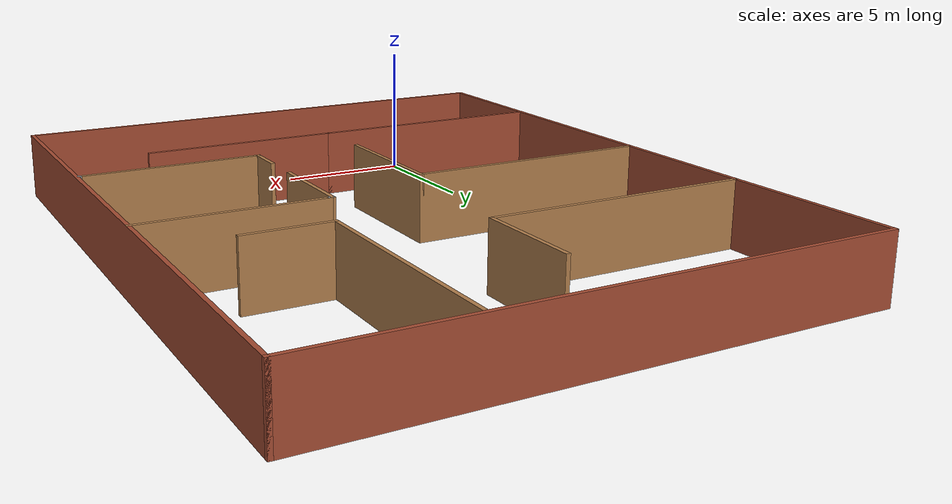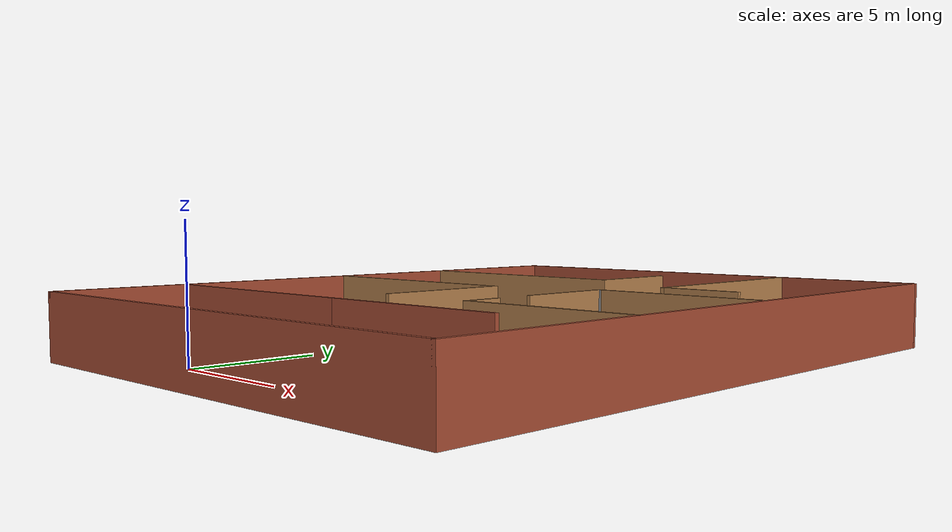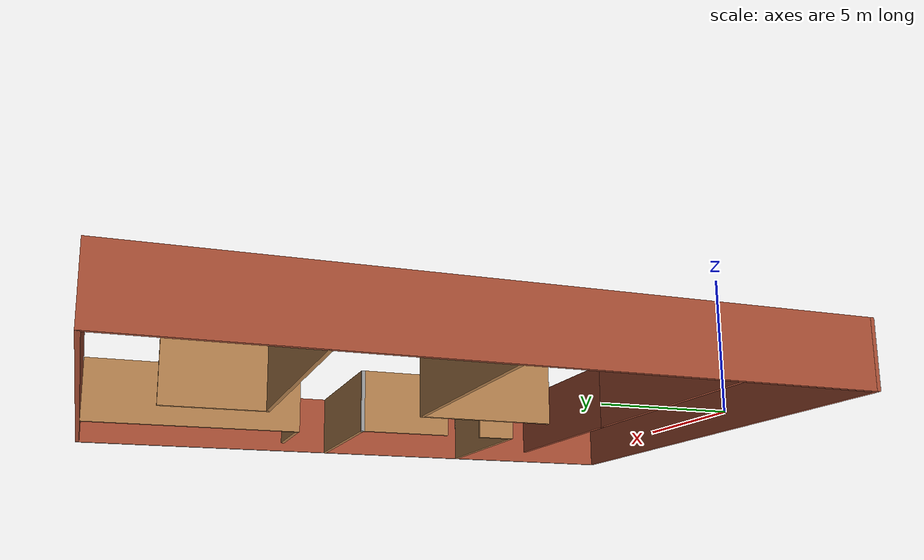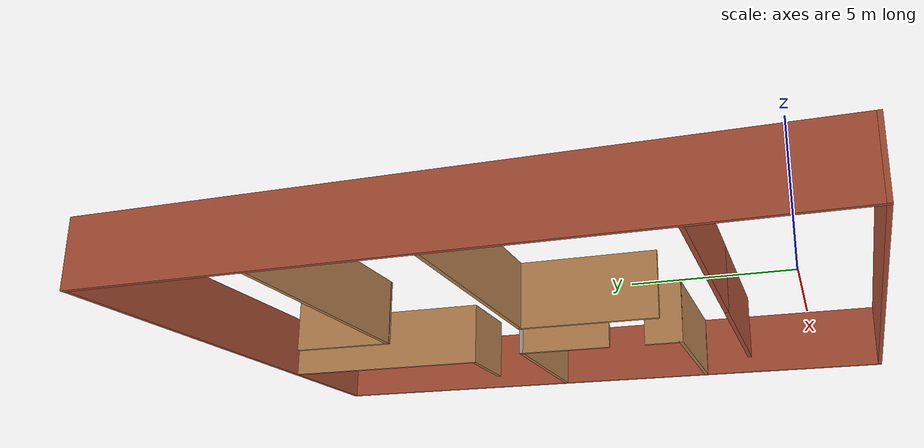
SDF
<?xml version='1.0'?>
<sdf version='1.6'>
  <model name='James_Condo'>
    <pose frame=''>5.085 9.945 0 0 -0 0</pose>
    <link name='Wall_0'>
      <collision name='Wall_0_Collision'>
        <geometry>
          <box>
            <size>25 0.15 2.5</size>
          </box>
        </geometry>
        <pose frame=''>0 0 1.25 0 -0 0</pose>
      </collision>
      <visual name='Wall_0_Visual'>
        <pose frame=''>0 0 1.25 0 -0 0</pose>
        <geometry>
          <box>
            <size>25 0.15 2.5</size>
          </box>
        </geometry>
        <material>
          <script>
            <uri>file://media/materials/scripts/gazebo.material</uri>
            <name>Gazebo/Bricks</name>
          </script>
          <ambient>1 1 1 1</ambient>
        </material>
        <meta>
          <layer>0</layer>
        </meta>
      </visual>
      <pose frame=''>-9.925 0 0 0 -0 1.5708</pose>
    </link>
    <link name='Wall_10'>
      <collision name='Wall_10_Collision'>
        <geometry>
          <box>
            <size>4 0.15 2.5</size>
          </box>
        </geometry>
        <pose frame=''>0 0 1.25 0 -0 0</pose>
      </collision>
      <visual name='Wall_10_Visual'>
        <pose frame=''>0 0 1.25 0 -0 0</pose>
        <geometry>
          <box>
            <size>4 0.15 2.5</size>
          </box>
        </geometry>
        <material>
          <script>
            <uri>file://media/materials/scripts/gazebo.material</uri>
            <name>Gazebo/Wood</name>
          </script>
          <ambient>1 1 1 1</ambient>
        </material>
        <meta>
          <layer>0</layer>
        </meta>
      </visual>
      <pose frame=''>-0.051792 7.79137 0 0 -0 1.5708</pose>
    </link>
    <link name='Wall_12'>
      <collision name='Wall_12_Collision'>
        <geometry>
          <box>
            <size>8.5 0.15 2.5</size>
          </box>
        </geometry>
        <pose frame=''>0 0 1.25 0 -0 0</pose>
      </collision>
      <visual name='Wall_12_Visual'>
        <pose frame=''>0 0 1.25 0 -0 0</pose>
        <geometry>
          <box>
            <size>8.5 0.15 2.5</size>
          </box>
        </geometry>
        <material>
          <script>
            <uri>file://media/materials/scripts/gazebo.material</uri>
            <name>Gazebo/Wood</name>
          </script>
          <ambient>1 1 1 1</ambient>
        </material>
        <meta>
          <layer>0</layer>
        </meta>
      </visual>
      <pose frame=''>4.24962 8.09027 0 0 -0 -1.5708</pose>
    </link>
    <link name='Wall_13'>
      <collision name='Wall_13_Collision'>
        <geometry>
          <box>
            <size>3.25 0.15 2.5</size>
          </box>
        </geometry>
        <pose frame=''>0 0 1.25 0 -0 0</pose>
      </collision>
      <visual name='Wall_13_Visual'>
        <pose frame=''>0 0 1.25 0 -0 0</pose>
        <geometry>
          <box>
            <size>3.25 0.15 2.5</size>
          </box>
        </geometry>
        <material>
          <script>
            <uri>file://media/materials/scripts/gazebo.material</uri>
            <name>Gazebo/Wood</name>
          </script>
          <ambient>1 1 1 1</ambient>
        </material>
        <meta>
          <layer>0</layer>
        </meta>
      </visual>
      <pose frame=''>5.79962 3.91527 0 0 -0 0</pose>
    </link>
    <link name='Wall_15'>
      <collision name='Wall_15_Collision'>
        <geometry>
          <box>
            <size>9.25 0.15 2.5</size>
          </box>
        </geometry>
        <pose frame=''>0 0 1.25 0 -0 0</pose>
      </collision>
      <visual name='Wall_15_Visual'>
        <pose frame=''>0 0 1.25 0 -0 0</pose>
        <geometry>
          <box>
            <size>9.25 0.15 2.5</size>
          </box>
        </geometry>
        <material>
          <script>
            <uri>file://media/materials/scripts/gazebo.material</uri>
            <name>Gazebo/Wood</name>
          </script>
          <ambient>1 1 1 1</ambient>
        </material>
        <meta>
          <layer>0</layer>
        </meta>
      </visual>
      <pose frame=''>-5.28144 0.205804 0 0 -0 0</pose>
    </link>
    <link name='Wall_18'>
      <collision name='Wall_18_Collision'>
        <geometry>
          <box>
            <size>9.25 0.15 2.5</size>
          </box>
        </geometry>
        <pose frame=''>0 0 1.25 0 -0 0</pose>
      </collision>
      <visual name='Wall_18_Visual'>
        <pose frame=''>0 0 1.25 0 -0 0</pose>
        <geometry>
          <box>
            <size>9.25 0.15 2.5</size>
          </box>
        </geometry>
        <material>
          <script>
            <uri>file://media/materials/scripts/gazebo.material</uri>
            <name>Gazebo/Bricks</name>
          </script>
          <ambient>1 1 1 1</ambient>
        </material>
        <meta>
          <layer>0</layer>
        </meta>
      </visual>
      <pose frame=''>-5.22874 -7.3006 0 0 -0 0</pose>
    </link>
    <link name='Wall_24'>
      <collision name='Wall_24_Collision'>
        <geometry>
          <box>
            <size>5.25 0.15 2.5</size>
          </box>
        </geometry>
        <pose frame=''>0 0 1.25 0 -0 0</pose>
      </collision>
      <visual name='Wall_24_Visual'>
        <pose frame=''>0 0 1.25 0 -0 0</pose>
        <geometry>
          <box>
            <size>5.25 0.15 2.5</size>
          </box>
        </geometry>
        <material>
          <script>
            <uri>file://media/materials/scripts/gazebo.material</uri>
            <name>Gazebo/Wood</name>
          </script>
          <ambient>1 1 1 1</ambient>
        </material>
        <meta>
          <layer>0</layer>
        </meta>
      </visual>
      <pose frame=''>-0.731434 -2.3442 0 0 -0 -1.5708</pose>
    </link>
    <link name='Wall_26'>
      <collision name='Wall_26_Collision'>
        <geometry>
          <box>
            <size>7.5 0.15 2.5</size>
          </box>
        </geometry>
        <pose frame=''>0 0 1.25 0 -0 0</pose>
      </collision>
      <visual name='Wall_26_Visual'>
        <pose frame=''>0 0 1.25 0 -0 0</pose>
        <geometry>
          <box>
            <size>7.5 0.15 2.5</size>
          </box>
        </geometry>
        <material>
          <script>
            <uri>file://media/materials/scripts/gazebo.material</uri>
            <name>Gazebo/Bricks</name>
          </script>
          <ambient>1 1 1 1</ambient>
        </material>
        <meta>
          <layer>0</layer>
        </meta>
      </visual>
      <pose frame=''>2.99626 -7.3006 0 0 -0 0</pose>
    </link>
    <link name='Wall_28'>
      <collision name='Wall_28_Collision'>
        <geometry>
          <box>
            <size>6.75 0.15 2.5</size>
          </box>
        </geometry>
        <pose frame=''>0 0 1.25 0 -0 0</pose>
      </collision>
      <visual name='Wall_28_Visual'>
        <pose frame=''>0 0 1.25 0 -0 0</pose>
        <geometry>
          <box>
            <size>6.75 0.15 2.5</size>
          </box>
        </geometry>
        <material>
          <script>
            <uri>file://media/materials/scripts/gazebo.material</uri>
            <name>Gazebo/Wood</name>
          </script>
          <ambient>1 1 1 1</ambient>
        </material>
        <meta>
          <layer>0</layer>
        </meta>
      </visual>
      <pose frame=''>6.62043 1.45525 0 0 -0 3.14159</pose>
    </link>
    <link name='Wall_29'>
      <collision name='Wall_29_Collision'>
        <geometry>
          <box>
            <size>0.25 0.15 2.5</size>
          </box>
        </geometry>
        <pose frame=''>0 0 1.25 0 -0 0</pose>
      </collision>
      <visual name='Wall_29_Visual'>
        <pose frame=''>0 0 1.25 0 -0 0</pose>
        <geometry>
          <box>
            <size>0.25 0.15 2.5</size>
          </box>
        </geometry>
        <material>
          <script>
            <uri>file://media/materials/scripts/gazebo.material</uri>
            <name>Gazebo/Grey</name>
          </script>
          <ambient>1 1 1 1</ambient>
        </material>
        <meta>
          <layer>0</layer>
        </meta>
      </visual>
      <pose frame=''>3.27043 1.45525 0 0 -0 3.14159</pose>
    </link>
    <link name='Wall_3'>
      <collision name='Wall_3_Collision'>
        <geometry>
          <box>
            <size>20 0.15 2.5</size>
          </box>
        </geometry>
        <pose frame=''>0 0 1.25 0 -0 0</pose>
      </collision>
      <visual name='Wall_3_Visual'>
        <pose frame=''>0 0 1.25 0 -0 0</pose>
        <geometry>
          <box>
            <size>20 0.15 2.5</size>
          </box>
        </geometry>
        <material>
          <script>
            <uri>file://media/materials/scripts/gazebo.material</uri>
            <name>Gazebo/Bricks</name>
          </script>
          <ambient>1 1 1 1</ambient>
        </material>
        <meta>
          <layer>0</layer>
        </meta>
      </visual>
      <pose frame=''>0 -12.425 0 0 -0 0</pose>
    </link>
    <link name='Wall_30'>
      <collision name='Wall_30_Collision'>
        <geometry>
          <box>
            <size>3.75 0.15 2.5</size>
          </box>
        </geometry>
        <pose frame=''>0 0 1.25 0 -0 0</pose>
      </collision>
      <visual name='Wall_30_Visual'>
        <pose frame=''>0 0 1.25 0 -0 0</pose>
        <geometry>
          <box>
            <size>3.75 0.15 2.5</size>
          </box>
        </geometry>
        <material>
          <script>
            <uri>file://media/materials/scripts/gazebo.material</uri>
            <name>Gazebo/Wood</name>
          </script>
          <ambient>1 1 1 1</ambient>
        </material>
        <meta>
          <layer>0</layer>
        </meta>
      </visual>
      <pose frame=''>3.22043 -0.344748 0 0 -0 -1.5708</pose>
    </link>
    <link name='Wall_32'>
      <collision name='Wall_32_Collision'>
        <geometry>
          <box>
            <size>1.5 0.15 2.5</size>
          </box>
        </geometry>
        <pose frame=''>0 0 1.25 0 -0 0</pose>
      </collision>
      <visual name='Wall_32_Visual'>
        <pose frame=''>0 0 1.25 0 -0 0</pose>
        <geometry>
          <box>
            <size>1.5 0.15 2.5</size>
          </box>
        </geometry>
        <material>
          <script>
            <uri>file://media/materials/scripts/gazebo.material</uri>
            <name>Gazebo/Wood</name>
          </script>
          <ambient>1 1 1 1</ambient>
        </material>
        <meta>
          <layer>0</layer>
        </meta>
      </visual>
      <pose frame=''>3.22858 -4.39072 0 0 -0 -1.5708</pose>
    </link>
    <link name='Wall_33'>
      <collision name='Wall_33_Collision'>
        <geometry>
          <box>
            <size>6.75 0.15 2.5</size>
          </box>
        </geometry>
        <pose frame=''>0 0 1.25 0 -0 0</pose>
      </collision>
      <visual name='Wall_33_Visual'>
        <pose frame=''>0 0 1.25 0 -0 0</pose>
        <geometry>
          <box>
            <size>6.75 0.15 2.5</size>
          </box>
        </geometry>
        <material>
          <script>
            <uri>file://media/materials/scripts/gazebo.material</uri>
            <name>Gazebo/Wood</name>
          </script>
          <ambient>1 1 1 1</ambient>
        </material>
        <meta>
          <layer>0</layer>
        </meta>
      </visual>
      <pose frame=''>6.52858 -5.06572 0 0 -0 0</pose>
    </link>
    <link name='Wall_34'>
      <collision name='Wall_34_Collision'>
        <geometry>
          <box>
            <size>0.15 0.15 2.5</size>
          </box>
        </geometry>
        <pose frame=''>0 0 1.25 0 -0 0</pose>
      </collision>
      <visual name='Wall_34_Visual'>
        <pose frame=''>0 0 1.25 0 -0 0</pose>
        <geometry>
          <box>
            <size>0.15 0.15 2.5</size>
          </box>
        </geometry>
        <material>
          <script>
            <uri>file://media/materials/scripts/gazebo.material</uri>
            <name>Gazebo/Grey</name>
          </script>
          <ambient>1 1 1 1</ambient>
        </material>
        <meta>
          <layer>0</layer>
        </meta>
      </visual>
      <pose frame=''>9.82858 -5.06572 0 0 -0 0</pose>
    </link>
    <link name='Wall_5'>
      <collision name='Wall_5_Collision'>
        <geometry>
          <box>
            <size>25 0.15 2.5</size>
          </box>
        </geometry>
        <pose frame=''>0 0 1.25 0 -0 0</pose>
      </collision>
      <visual name='Wall_5_Visual'>
        <pose frame=''>0 0 1.25 0 -0 0</pose>
        <geometry>
          <box>
            <size>25 0.15 2.5</size>
          </box>
        </geometry>
        <material>
          <script>
            <uri>file://media/materials/scripts/gazebo.material</uri>
            <name>Gazebo/Bricks</name>
          </script>
          <ambient>1 1 1 1</ambient>
        </material>
        <meta>
          <layer>0</layer>
        </meta>
      </visual>
      <pose frame=''>9.925 0 0 0 -0 1.5708</pose>
    </link>
    <link name='Wall_7'>
      <collision name='Wall_7_Collision'>
        <geometry>
          <box>
            <size>20 0.15 2.5</size>
          </box>
        </geometry>
        <pose frame=''>0 0 1.25 0 -0 0</pose>
      </collision>
      <visual name='Wall_7_Visual'>
        <pose frame=''>0 0 1.25 0 -0 0</pose>
        <geometry>
          <box>
            <size>20 0.15 2.5</size>
          </box>
        </geometry>
        <material>
          <script>
            <uri>file://media/materials/scripts/gazebo.material</uri>
            <name>Gazebo/Bricks</name>
          </script>
          <ambient>1 1 1 1</ambient>
        </material>
        <meta>
          <layer>0</layer>
        </meta>
      </visual>
      <pose frame=''>0 12.425 0 0 -0 0</pose>
    </link>
    <link name='Wall_9'>
      <collision name='Wall_9_Collision'>
        <geometry>
          <box>
            <size>10 0.15 2.5</size>
          </box>
        </geometry>
        <pose frame=''>0 0 1.25 0 -0 0</pose>
      </collision>
      <visual name='Wall_9_Visual'>
        <pose frame=''>0 0 1.25 0 -0 0</pose>
        <geometry>
          <box>
            <size>10 0.15 2.5</size>
          </box>
        </geometry>
        <material>
          <script>
            <uri>file://media/materials/scripts/gazebo.material</uri>
            <name>Gazebo/Wood</name>
          </script>
          <ambient>1 1 1 1</ambient>
        </material>
        <meta>
          <layer>0</layer>
        </meta>
      </visual>
      <pose frame=''>-4.97679 5.86637 0 0 -0 0</pose>
    </link>
    <static>1</static>
  </model>
</sdf>
